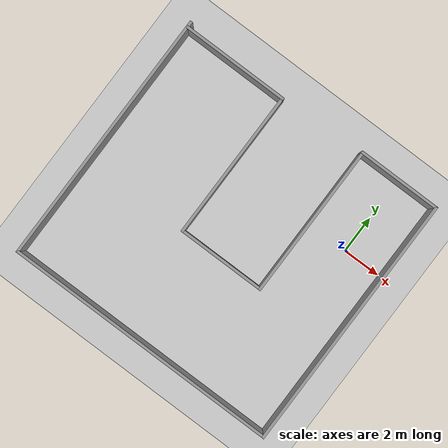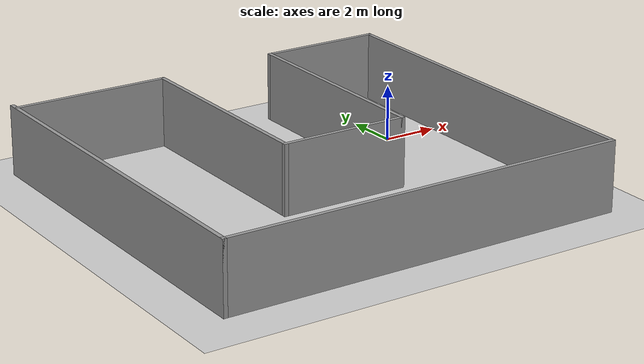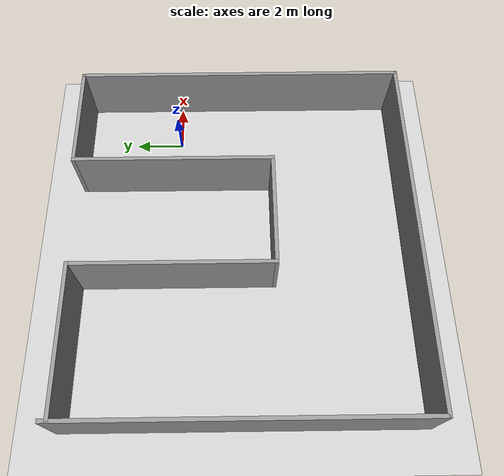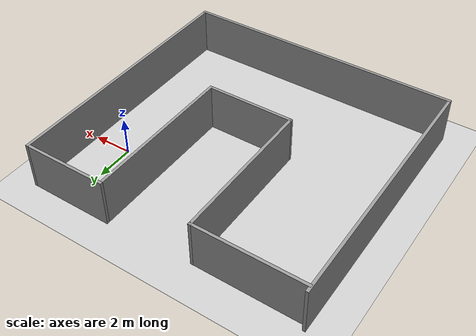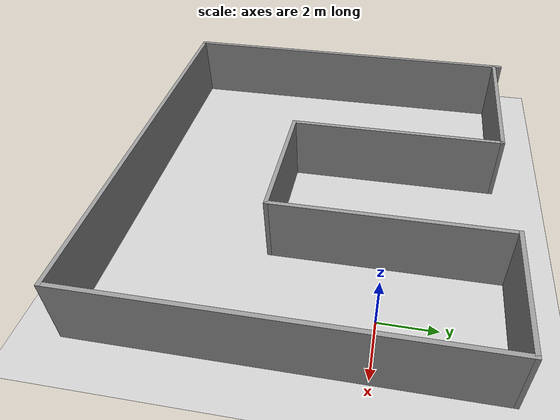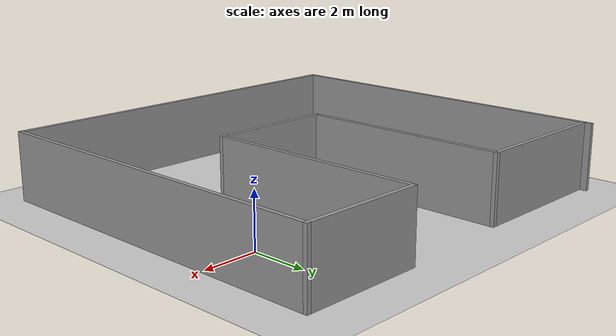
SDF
<sdf version="1.6">
 <world name="default">
  <light name="sun" type="directional">
   <pose>0 0 10 0 -0 0</pose>
   <diffuse>0.8 0.8 0.8 1</diffuse>
   <specular>0.1 0.1 0.1 1</specular>
   <attenuation>
    <range>1000</range>
    <constant>0.9</constant>
    <linear>0.01</linear>
    <quadratic>0.001</quadratic>
   </attenuation>
   <direction>-0.5 0.5 -1</direction>
  </light>
  <model name="ground_plane">
   <static>1</static>
   <link name="link">
    <collision name="collision">
     <geometry><plane><normal>0 0 1</normal><size>100 100</size></plane></geometry>
     <surface><friction><ode><mu>100</mu><mu2>50</mu2></ode></friction></surface>
    </collision>
    <visual name="visual">
     <cast_shadows>0</cast_shadows>
     <geometry><plane><normal>0 0 1</normal><size>100 100</size></plane></geometry>
     <material>
      <script><uri>file://media/materials/scripts/gazebo.material</uri><name>Gazebo/Grey</name></script>
     </material>
    </visual>
   </link>
  </model>
  <gravity>0 0 -9.8</gravity>
  <magnetic_field>6e-06 2.3e-05 -4.2e-05</magnetic_field>
  <atmosphere type="adiabatic"/>
  <physics name="default_physics" default="0" type="ode">
   <max_step_size>0.001</max_step_size>
   <real_time_factor>1</real_time_factor>
   <real_time_update_rate>1000</real_time_update_rate>
  </physics>
  <scene><ambient>0.4 0.4 0.4 1</ambient><background>0.7 0.7 0.7 1</background><shadows>1</shadows></scene>
  <spherical_coordinates>
   <surface_model>EARTH_WGS84</surface_model>
   <latitude_deg>0</latitude_deg>
   <longitude_deg>0</longitude_deg>
   <elevation>0</elevation>
   <heading_deg>0</heading_deg>
  </spherical_coordinates>
  <model name="ulisu10">
   <pose>-5.23271 -2.67147 0 0 -0 0</pose>
   <link name="Wall_0">
    <collision name="Wall_0_Collision">
     <geometry><box><size>13.75 0.15 2.5</size></box></geometry>
     <pose>0 0 1.25 0 -0 0</pose>
    </collision>
    <visual name="Wall_0_Visual">
     <pose>0 0 1.25 0 -0 0</pose>
     <geometry><box><size>13.75 0.15 2.5</size></box></geometry>
     <material>
      <script><uri>file://media/materials/scripts/gazebo.material</uri><name>Gazebo/Grey</name></script>
      <ambient>1 1 1 1</ambient>
     </material>
    </visual>
    <pose>-7.3 0 0 0 0 -1.5708</pose>
   </link>
   <link name="Wall_1">
    <collision name="Wall_1_Collision">
     <geometry><box><size>14.75 0.15 2.5</size></box></geometry>
     <pose>0 0 1.25 0 -0 0</pose>
    </collision>
    <visual name="Wall_1_Visual">
     <pose>0 0 1.25 0 -0 0</pose>
     <geometry><box><size>14.75 0.15 2.5</size></box></geometry>
     <material>
      <script><uri>file://media/materials/scripts/gazebo.material</uri><name>Gazebo/Grey</name></script>
      <ambient>1 1 1 1</ambient>
     </material>
    </visual>
    <pose>0 -6.8 0 0 -0 0</pose>
   </link>
   <link name="Wall_2">
    <collision name="Wall_2_Collision">
     <geometry><box><size>13.75 0.15 2.5</size></box></geometry>
     <pose>0 0 1.25 0 -0 0</pose>
    </collision>
    <visual name="Wall_2_Visual">
     <pose>0 0 1.25 0 -0 0</pose>
     <geometry><box><size>13.75 0.15 2.5</size></box></geometry>
     <material>
      <script><uri>file://media/materials/scripts/gazebo.material</uri><name>Gazebo/Grey</name></script>
      <ambient>1 1 1 1</ambient>
     </material>
    </visual>
    <pose>7.3 0 0 0 -0 1.5708</pose>
   </link>
   <link name="Wall_3">
    <collision name="Wall_3_Collision">
     <geometry><box><size>4.5 0.15 2.5</size></box></geometry>
     <pose>0 0 1.25 0 -0 0</pose>
    </collision>
    <visual name="Wall_3_Visual">
     <pose>0 0 1.25 0 -0 0</pose>
     <geometry><box><size>4.5 0.15 2.5</size></box></geometry>
     <material>
      <script><uri>file://media/materials/scripts/gazebo.material</uri><name>Gazebo/Grey</name></script>
      <ambient>1 1 1 1</ambient>
     </material>
    </visual>
    <pose>5.125 6.8 0 0 -0 3.14159</pose>
   </link>
   <link name="Wall_4">
    <collision name="Wall_4_Collision">
     <geometry><box><size>8.25 0.15 2.5</size></box></geometry>
     <pose>0 0 1.25 0 -0 0</pose>
    </collision>
    <visual name="Wall_4_Visual">
     <pose>0 0 1.25 0 -0 0</pose>
     <geometry><box><size>8.25 0.15 2.5</size></box></geometry>
     <material>
      <script><uri>file://media/materials/scripts/gazebo.material</uri><name>Gazebo/Grey</name></script>
      <ambient>1 1 1 1</ambient>
     </material>
    </visual>
    <pose>2.95 2.75 0 0 0 -1.5708</pose>
   </link>
   <link name="Wall_5">
    <collision name="Wall_5_Collision">
     <geometry><box><size>4.75 0.15 2.5</size></box></geometry>
     <pose>0 0 1.25 0 -0 0</pose>
    </collision>
    <visual name="Wall_5_Visual">
     <pose>0 0 1.25 0 -0 0</pose>
     <geometry><box><size>4.75 0.15 2.5</size></box></geometry>
     <material>
      <script><uri>file://media/materials/scripts/gazebo.material</uri><name>Gazebo/Grey</name></script>
      <ambient>1 1 1 1</ambient>
     </material>
    </visual>
    <pose>0.65 -1.3 0 0 -0 3.14159</pose>
   </link>
   <link name="Wall_6">
    <collision name="Wall_6_Collision">
     <geometry><box><size>8 0.15 2.5</size></box></geometry>
     <pose>0 0 1.25 0 -0 0</pose>
    </collision>
    <visual name="Wall_6_Visual">
     <pose>0 0 1.25 0 -0 0</pose>
     <geometry><box><size>8 0.15 2.5</size></box></geometry>
     <material>
      <script><uri>file://media/materials/scripts/gazebo.material</uri><name>Gazebo/Grey</name></script>
      <ambient>1 1 1 1</ambient>
     </material>
    </visual>
    <pose>-1.65 2.625 0 0 -0 1.5708</pose>
   </link>
   <link name="Wall_7">
    <collision name="Wall_7_Collision">
     <geometry><box><size>5.75 0.15 2.5</size></box></geometry>
     <pose>0 0 1.25 0 -0 0</pose>
    </collision>
    <visual name="Wall_7_Visual">
     <pose>0 0 1.25 0 -0 0</pose>
     <geometry><box><size>5.75 0.15 2.5</size></box></geometry>
     <material>
      <script><uri>file://media/materials/scripts/gazebo.material</uri><name>Gazebo/Grey</name></script>
      <ambient>1 1 1 1</ambient>
     </material>
    </visual>
    <pose>-4.45 6.55 0 0 -0 3.14159</pose>
   </link>
   <static>1</static>
  </model>
 </world>
</sdf>
